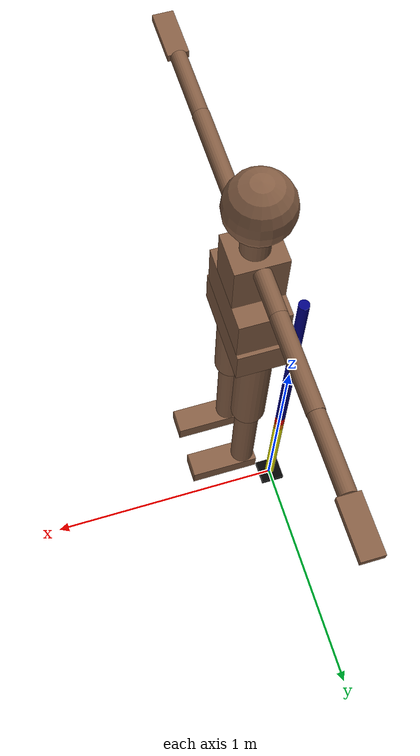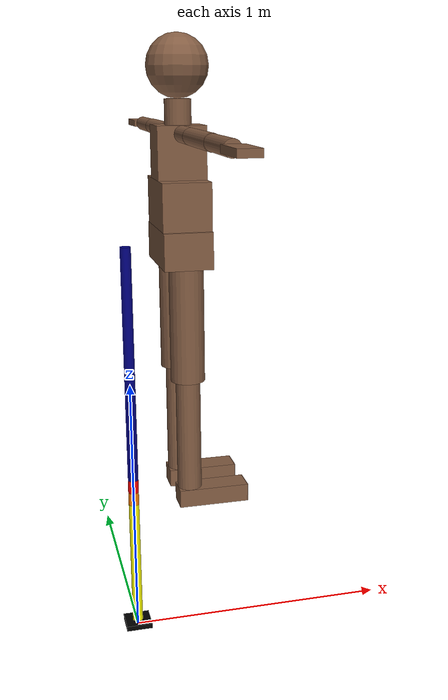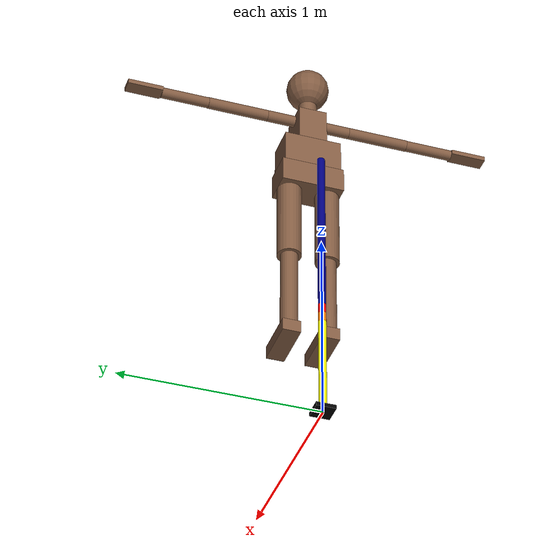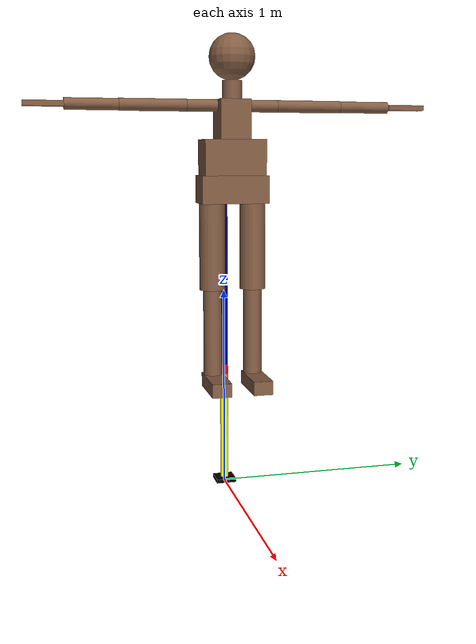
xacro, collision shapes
<?xml version="1.0"?>
<robot xmlns:xacro="http://www.ros.org/wiki/xacro" name="human_support">

    <xacro:include filename="common_properties.xacro"/>
    <xacro:include filename="arm_3dof.xacro"/>
    <xacro:include filename="$(find humanoid_robot)/humanSubjectWithMesh_simplified.urdf"/>

     <joint name="arm_human_joint" type="fixed">
        <origin xyz="${(arm_base_length)*2} 0.0 ${twist_arm_length}" rpy="0.0 0.0 0.0"/>
        <parent link="link4"/>
        <child link="Pelvis"/>
    </joint>

    <gazebo>
        <plugin filename="gz-sim-pose-publisher-system" name="gz::sim::systems::PosePublisher">
            <publish_link_pose>false</publish_link_pose>
            <publish_collision_pose>false</publish_collision_pose>
            <publish_visual_pose>false</publish_visual_pose>
            <publish_nested_model_pose>true</publish_nested_model_pose>
        </plugin>
    </gazebo>
</robot>

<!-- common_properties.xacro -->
<robot xmlns:xacro="http://www.ros.org/wiki/xacro">

    <material name="blue">
        <color rgba="0.0 0.0 0.5 1.0"/>
    </material>

    <material name="grey">
        <color rgba="0.5 0.5 0.5 1.0"/>
    </material>

    <material name="orange">
        <color rgba="1.0 0.5 0.0 1.0"/>
    </material>

    <material name="yellow">
        <color rgba="1.0 1.0 0.0 1.0"/>
    </material>

    <material name="black">
        <color rgba="0 0 0 1"/>
    </material>

    <material name="red">
        <color rgba="1 0 0 1"/>
    </material>

    <xacro:macro name="box_inertia" params="m l w h xyz rpy">
        <inertial>
            <origin xyz="${xyz}" rpy="${rpy}"/>
            <mass value="${m}"/>
            <inertia ixx="${(m/12) * (h*h+w*w)}" ixy="0.0" ixz="0.0"
                     iyy="${(m/12) * (l*l+h*h)}" iyz="0.0"
                     izz="${(m/12) * (l*l+w*w)}"/>
        </inertial>
    </xacro:macro>

    <xacro:macro name="cylinder_inertia" params="m r h xyz rpy">
        <inertial>
            <origin xyz="${xyz}" rpy="${rpy}"/>
            <mass value="${m}"/>
            <inertia ixx="${(m/12) * (3*r*r + h*h)}" ixy="0.0" ixz="0.0"
                     iyy="${(m/12) * (3*r*r + h*h)}" iyz="0.0"
                     izz="${(m/2) * (r*r)}"/>
        </inertial>
    </xacro:macro>

    <xacro:macro name="sphere_inertia" params="m r xyz rpy">
        <inertial>
            <origin xyz="${xyz}" rpy="${rpy}"/>
            <mass value="${m}"/>
            <inertia ixx="${(2/5) * m * r*r}" ixy="0.0" ixz="0.0"
                     iyy="${(2/5) * m * r*r}" iyz="0.0"
                     izz="${(2/5) * m * r*r}"/>
        </inertial>
    </xacro:macro>

</robot>

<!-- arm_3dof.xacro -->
<robot xmlns:xacro="http://www.ros.org/wiki/xacro">

    <xacro:property name="arm_base_length" value="0.1"/>
    <xacro:property name="arm_base_width" value="0.1"/>
    <xacro:property name="arm_base_height" value="0.02"/>
    <xacro:property name="arm_radius" value="0.02"/>
    <xacro:property name="arm_length" value="0.25"/>

    <!-- length link1 should be at least the length of foot collision box (0.2584 meters) -->
    <xacro:property name="link1_length" value="0.5"/>
    <!-- revolute arm links are small to keep the movement gathered -->
    <xacro:property name="revolute_arm_length" value="0.05"/>
    <!-- twist arm length is the rest of the length to get to 1 meter from end of link 1 -->
    <xacro:property name="twist_arm_length" value="${1-(revolute_arm_length*2)}"/>

    <link name="base_link">
        <visual>
            <geometry>
                <box size="${arm_base_length} ${arm_base_width} ${arm_base_height}"/>
            </geometry>
            <origin xyz="0.0 0.0 ${arm_base_height/2}" rpy="0.0 0.0 0.0"/>
            <material name="black"/>
        </visual>
        <collision>
            <geometry>
                <box size="${arm_base_length} ${arm_base_width} ${arm_base_height}"/>
            </geometry>
            <origin xyz="0.0 0.0 ${arm_base_height/2}" rpy="0.0 0.0 0.0"/>
        </collision>
        <xacro:box_inertia m="0.5" l="${arm_base_length}" w="${arm_base_width}" h="${arm_base_height}"
                           xyz="0.0 0.0 ${arm_base_height/2.0}" rpy="0.0 0.0 0.0" />
    </link>

    <link name="link1">
        <visual>
            <geometry>
                <cylinder radius="${arm_radius}" length="${link1_length}"/>
            </geometry>
            <origin xyz="0.0 0.0 ${link1_length/2}" rpy="0.0 0.0 0.0"/>
            <material name="yellow"/>
        </visual>
        <collision>
            <geometry>
                <cylinder radius="${arm_radius}" length="${link1_length}"/>
            </geometry>
            <origin xyz="0.0 0.0 ${link1_length/2}" rpy="0.0 0.0 0.0"/>
        </collision>
        <xacro:cylinder_inertia m="0.3" r="${arm_radius}" h="${link1_length}"
                                xyz="0.0 0.0 ${link1_length/2}" rpy="0.0 0.0 0.0" />
    </link>

    <link name="link2">
        <visual>
            <geometry>
                <cylinder radius="${arm_radius}" length="${revolute_arm_length}"/>
            </geometry>
            <origin xyz="0.0 0.0 ${revolute_arm_length/2}" rpy="0.0 0.0 0.0"/>
            <material name="orange"/>
        </visual>
        <collision>
            <geometry>
                <cylinder radius="${arm_radius}" length="${revolute_arm_length}"/>
            </geometry>
            <origin xyz="0.0 0.0 ${revolute_arm_length/2}" rpy="0.0 0.0 0.0"/>
        </collision>
        <xacro:cylinder_inertia m="0.3" r="${arm_radius}" h="${revolute_arm_length}"
                                xyz="0.0 0.0 ${revolute_arm_length/2}" rpy="0.0 0.0 0.0" />
    </link>

    <link name="link3">
        <visual>
            <geometry>
                <cylinder radius="${arm_radius}" length="${revolute_arm_length}"/>
            </geometry>
            <origin xyz="0.0 0.0 ${revolute_arm_length/2}" rpy="0.0 0.0 0.0"/>
            <material name="red"/>
        </visual>
        <collision>
            <geometry>
                <cylinder radius="${arm_radius}" length="${revolute_arm_length}"/>
            </geometry>
            <origin xyz="0.0 0.0 ${revolute_arm_length/2}" rpy="0.0 0.0 0.0"/>
        </collision>
        <xacro:cylinder_inertia m="0.3" r="${arm_radius}" h="${revolute_arm_length}"
                                xyz="0.0 0.0 ${revolute_arm_length/2}" rpy="0.0 0.0 0.0" />
    </link>

    <link name="link4">
        <visual>
            <geometry>
                <cylinder radius="${arm_radius}" length="${twist_arm_length}"/>
            </geometry>
            <origin xyz="0.0 0.0 ${twist_arm_length/2}" rpy="0.0 0.0 0.0"/>
            <material name="blue"/>
        </visual>
        <collision>
            <geometry>
                <cylinder radius="${arm_radius}" length="${twist_arm_length}"/>
            </geometry>
            <origin xyz="0.0 0.0 ${twist_arm_length/2}" rpy="0.0 0.0 0.0"/>
        </collision>
        <xacro:cylinder_inertia m="0.3" r="${arm_radius}" h="${twist_arm_length}"
                                xyz="0.0 0.0 ${twist_arm_length/2}" rpy="0.0 0.0 0.0" />
    </link>

    <!-- Fixed joint to slightly raise humanoid before movement -->
    <joint name="base_link1_joint" type="fixed">
        <parent link="base_link"/>
        <child link="link1"/>
        <origin xyz="0 0 ${arm_base_height}" rpy="0 0 0"/>
    </joint>

    <joint name="link1_link2_joint" type="revolute">
        <parent link="link1"/>
        <child link="link2"/>
        <axis xyz="1 0 0"/>
        <limit lower="${-pi/2}" upper="${pi/2}" velocity="100.0" effort="1000.0"/>
        <origin xyz="0 0 ${link1_length}" rpy="0 0 0"/>
    </joint>

    <joint name="link2_link3_joint" type="revolute">
        <parent link="link2"/>
        <child link="link3"/>
        <axis xyz="0 1 0"/>
        <limit lower="${-pi/2}" upper="${pi/2}" velocity="100.0" effort="1000.0"/>
        <origin xyz="0 0 ${revolute_arm_length}" rpy="0 0 0"/>
    </joint>

    <joint name="link3_link4_joint" type="revolute">
        <parent link="link3"/>
        <child link="link4"/>
        <axis xyz="0 0 1"/>
        <limit lower="${-pi/2}" upper="${pi/2}" velocity="100.0" effort="1000.0"/>
        <origin xyz="0 0 ${revolute_arm_length}" rpy="0 0 0"/>
    </joint>

</robot>

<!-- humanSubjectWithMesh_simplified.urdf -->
<robot name="HumanModel">

  <link name="Pelvis">
    <inertial>
      <origin xyz="0.0 0.0 0.0" rpy="0.0 0.0 0.0"/>
      <mass value="0.07098"/>
      <inertia ixx="0.072762100775" ixy="0.0" ixz="0.0" iyy="0.028514890039999997" iyz="0.0" izz="0.080476585735"/>
    </inertial>
    <visual name="Pelvis">
      <geometry>
        <mesh filename="file://$(find humanoid_robot)/meshes/Pelvis.stl" scale="0.58333333 1.03030303 1.03030303"/>
      </geometry>
      <material name="Link">
        <color rgba="0.51 0.36 0.26 1.0"/>
      </material>
      <origin xyz="0.0 0.0 0.0" rpy="0.0 0.0 0.0"/>
    </visual>
    <visual name="Pelvis_RightRecAbd">
      <geometry>
        <mesh filename="file://$(find humanoid_robot)/meshes/Pelvis_RightRecAbd.stl" scale="0.58333333 1.03030303 1.03030303"/>
      </geometry>
      <material name="muscle">
        <color rgba="0.51 0.36 0.26 1.0"/>
      </material>
      <origin xyz="0.0 0.0 0.0" rpy="0.0 0.0 0.0"/>
    </visual>
    <visual name="Pelvis_RightErcSpin">
      <geometry>
        <mesh filename="file://$(find humanoid_robot)/meshes/Pelvis_RightErcSpin.stl" scale="0.58333333 1.03030303 1.03030303"/>
      </geometry>
      <material name="muscle">
        <color rgba="0.51 0.36 0.26 1.0"/>
      </material>
      <origin xyz="0.0 0.0 0.0" rpy="0.0 0.0 0.0"/>
    </visual>
    <visual name="Pelvis_LeftRecAbd">
      <geometry>
        <mesh filename="file://$(find humanoid_robot)/meshes/Pelvis_LeftRecAbd.stl" scale="0.58333333 1.03030303 1.03030303"/>
      </geometry>
      <material name="muscle">
        <color rgba="0.51 0.36 0.26 1.0"/>
      </material>
      <origin xyz="0.0 0.0 0.0" rpy="0.0 0.0 0.0"/>
    </visual>
    <visual name="Pelvis_LeftErcSpin">
      <geometry>
        <mesh filename="file://$(find humanoid_robot)/meshes/Pelvis_LeftErcSpin.stl" scale="0.58333333 1.03030303 1.03030303"/>
      </geometry>
      <material name="muscle">
        <color rgba="0.51 0.36 0.26 1.0"/>
      </material>
      <origin xyz="0.0 0.0 0.0" rpy="0.0 0.0 0.0"/>
    </visual>
    <collision>
      <geometry>
        <box size="0.175  0.3247 0.1326"/>
      </geometry>
      <origin xyz="0.0 0.0 0.0" rpy="0.0 0.0 0.0"/>
    </collision>
  </link>
  <link name="LowerTrunk_f1">
    <inertial>
      <origin xyz="0.0 0.0 0.0" rpy="0.0 0.0 0.0"/>
      <mass value="0.01"/>
      <inertia ixx="0.01" ixy="0.0" ixz="0.0" iyy="0.01" iyz="0.0" izz="0.01"/>
    </inertial>
  </link>
  <link name="LowerTrunk">
    <inertial>
      <origin xyz="0.0 0.0 0.085" rpy="0.0 0.0 0.0"/>
      <mass value="0.09294"/>
      <inertia ixx="0.09014997218" ixy="0.0" ixz="0.0" iyy="0.04610211250000001" iyz="0.0" izz="0.09148598468"/>
    </inertial>
    <visual name="LowerTrunk">
      <geometry>
        <mesh filename="file://$(find humanoid_robot)/meshes/LowerTrunk.stl" scale="0.58333333 1.03030303 1.03030303"/>
      </geometry>
      <material name="Link">
        <color rgba="0.51 0.36 0.26 1.0"/>
      </material>
      <origin xyz="0.0 0.0 0.085" rpy="0.0 0.0 0.0"/>
    </visual>
    <visual name="LowerTrunk_RightRecAbd">
      <geometry>
        <mesh filename="file://$(find humanoid_robot)/meshes/LowerTrunk_RightRecAbd.stl" scale="0.58333333 1.03030303 1.03030303"/>
      </geometry>
      <material name="muscle">
        <color rgba="0.51 0.36 0.26 1.0"/>
      </material>
      <origin xyz="0.0 0.0 0.085" rpy="0.0 0.0 0.0"/>
    </visual>
    <visual name="LowerTrunk_RightErcSpin">
      <geometry>
        <mesh filename="file://$(find humanoid_robot)/meshes/LowerTrunk_RightErcSpin.stl" scale="0.58333333 1.03030303 1.03030303"/>
      </geometry>
      <material name="muscle">
        <color rgba="0.51 0.36 0.26 1.0"/>
      </material>
      <origin xyz="0.0 0.0 0.085" rpy="0.0 0.0 0.0"/>
    </visual>
    <visual name="LowerTrunk_LefttRecAbd">
      <geometry>
        <mesh filename="file://$(find humanoid_robot)/meshes/LowerTrunk_LefttRecAbd.stl" scale="0.58333333 1.03030303 1.03030303"/>
      </geometry>
      <material name="muscle">
        <color rgba="0.51 0.36 0.26 1.0"/>
      </material>
      <origin xyz="0.0 0.0 0.085" rpy="0.0 0.0 0.0"/>
    </visual>
    <visual name="LowerTrunk_LeftErcSpin">
      <geometry>
        <mesh filename="file://$(find humanoid_robot)/meshes/LowerTrunk_LeftErcSpin.stl" scale="0.58333333 1.03030303 1.03030303"/>
      </geometry>
      <material name="muscle">
        <color rgba="0.51 0.36 0.26 1.0"/>
      </material>
      <origin xyz="0.0 0.0 0.085" rpy="0.0 0.0 0.0"/>
    </visual>
    <collision>
      <geometry>
        <box size="0.175  0.2958 0.17  "/>
      </geometry>
      <origin xyz="0.0 0.0 0.085" rpy="0.0 0.0 0.0"/>
    </collision>
  </link>
  <link name="UpperTrunk_f1">
    <inertial>
      <origin xyz="0.0 0.0 0.0" rpy="0.0 0.0 0.0"/>
      <mass value="0.01"/>
      <inertia ixx="0.01" ixy="0.0" ixz="0.0" iyy="0.01" iyz="0.0" izz="0.01"/>
    </inertial>
  </link>
  <link name="UpperTrunk_f2">
    <inertial>
      <origin xyz="0.0 0.0 0.0" rpy="0.0 0.0 0.0"/>
      <mass value="0.01"/>
      <inertia ixx="0.01" ixy="0.0" ixz="0.0" iyy="0.01" iyz="0.0" izz="0.01"/>
    </inertial>
  </link>
  <link name="UpperTrunk">
    <inertial>
      <origin xyz="0.0 0.0 0.0935" rpy="0.0 0.0 0.0"/>
      <mass value="0.03138"/>
      <inertia ixx="0.014777222337222225" ixy="0.0" ixz="0.0" iyy="0.017152831" iyz="0.0" izz="0.013641266337222223"/>
    </inertial>
    <visual name="UpperTrunk">
      <geometry>
        <mesh filename="file://$(find humanoid_robot)/meshes/UpperTrunk.stl" scale="0.58333333 1.03030303 1.03030303"/>
      </geometry>
      <material name="Link">
        <color rgba="0.51 0.36 0.26 1.0"/>
      </material>
      <origin xyz="0.0 0.0 0.0935" rpy="0.0 0.0 0.0"/>
    </visual>
    <visual name="UpperTrunk_RightRecAbd">
      <geometry>
        <mesh filename="file://$(find humanoid_robot)/meshes/UpperTrunk_RightRecAbd.stl" scale="0.58333333 1.03030303 1.03030303"/>
      </geometry>
      <material name="muscle">
        <color rgba="0.51 0.36 0.26 1.0"/>
      </material>
      <origin xyz="0.0 0.0 0.0935" rpy="0.0 0.0 0.0"/>
    </visual>
    <visual name="UpperTrunk_RightErcSpin">
      <geometry>
        <mesh filename="file://$(find humanoid_robot)/meshes/UpperTrunk_RightErcSpin.stl" scale="0.58333333 1.03030303 1.03030303"/>
      </geometry>
      <material name="muscle">
        <color rgba="0.51 0.36 0.26 1.0"/>
      </material>
      <origin xyz="0.0 0.0 0.0935" rpy="0.0 0.0 0.0"/>
    </visual>
    <visual name="UpperTrunk_LeftRecAbd">
      <geometry>
        <mesh filename="file://$(find humanoid_robot)/meshes/UpperTrunk_LeftRecAbd.stl" scale="0.58333333 1.03030303 1.03030303"/>
      </geometry>
      <material name="muscle">
        <color rgba="0.51 0.36 0.26 1.0"/>
      </material>
      <origin xyz="0.0 0.0 0.0935" rpy="0.0 0.0 0.0"/>
    </visual>
    <visual name="UpperTrunk_LeftErcSpin">
      <geometry>
        <mesh filename="file://$(find humanoid_robot)/meshes/UpperTrunk_LeftErcSpin.stl" scale="0.58333333 1.03030303 1.03030303"/>
      </geometry>
      <material name="muscle">
        <color rgba="0.51 0.36 0.26 1.0"/>
      </material>
      <origin xyz="0.0 0.0 0.0935" rpy="0.0 0.0 0.0"/>
    </visual>
    <collision>
      <geometry>
        <box size="0.175      0.14676667 0.187     "/>
      </geometry>
      <origin xyz="0.0 0.0 0.0935" rpy="0.0 0.0 0.0"/>
    </collision>
  </link>
  <link name="RightShoulder">
    <inertial>
      <origin xyz="0.0 -0.07338333333333334 0.0" rpy="1.5708 0.0 0.0"/>
      <mass value="0.03138"/>
      <inertia ixx="0.01" ixy="0.0" ixz="0.0" iyy="0.01" iyz="0.0" izz="0.01"/>
    </inertial>
    <visual name="RightShoulder">
      <geometry>
        <mesh filename="file://$(find humanoid_robot)/meshes/RightShoulder.stl" scale="0.64444444 0.64444444 1.03030303"/>
      </geometry>
      <material name="Link">
        <color rgba="0.51 0.36 0.26 1.0"/>
      </material>
      <origin xyz="0.0 -0.07338333333333334 0.0" rpy="1.5708 0.0 0.0"/>
    </visual>
    <collision>
      <geometry>
        <cylinder radius="0.029" length="0.14676666666666668"/>
      </geometry>
      <origin xyz="0.0 -0.07338333333333334 0.0" rpy="1.5708 0.0 0.0"/>
    </collision>
  </link>
  <link name="LeftShoulder">
    <inertial>
      <origin xyz="0.0 0.07338333333333334 0.0" rpy="1.5708 0.0 0.0"/>
      <mass value="0.03138"/>
      <inertia ixx="0.01" ixy="0.0" ixz="0.0" iyy="0.01" iyz="0.0" izz="0.01"/>
    </inertial>
    <visual name="LeftShoulder">
      <geometry>
        <mesh filename="file://$(find humanoid_robot)/meshes/LeftShoulder.stl" scale="0.64444444 0.64444444 1.03030303"/>
      </geometry>
      <material name="Link">
        <color rgba="0.51 0.36 0.26 1.0"/>
      </material>
      <origin xyz="0.0 0.07338333333333334 0.0" rpy="1.5708 0.0 0.0"/>
    </visual>
    <collision>
      <geometry>
        <cylinder radius="0.029" length="0.14676666666666668"/>
      </geometry>
      <origin xyz="0.0 0.07338333333333334 0.0" rpy="1.5708 0.0 0.0"/>
    </collision>
  </link>
  <link name="Neck_f1">
    <inertial>
      <origin xyz="0.0 0.0 0.0" rpy="0.0 0.0 0.0"/>
      <mass value="0.01"/>
      <inertia ixx="0.01" ixy="0.0" ixz="0.0" iyy="0.01" iyz="0.0" izz="0.01"/>
    </inertial>
  </link>
  <link name="Neck_f2">
    <inertial>
      <origin xyz="0.0 0.0 0.0" rpy="0.0 0.0 0.0"/>
      <mass value="0.01"/>
      <inertia ixx="0.01" ixy="0.0" ixz="0.0" iyy="0.01" iyz="0.0" izz="0.01"/>
    </inertial>
  </link>
  <link name="Neck">
    <inertial>
      <origin xyz="0.0 0.0 0.044199999999999996" rpy="0.0 0.0 0.0"/>
      <mass value="0.011640000000000001"/>
      <inertia ixx="0.01" ixy="0.0" ixz="0.0" iyy="0.01" iyz="0.0" izz="0.01"/>
    </inertial>
    <visual name="Neck">
      <geometry>
        <mesh filename="file://$(find humanoid_robot)/meshes/Neck.stl" scale="0.73076923 0.73076923 1.03030303"/>
      </geometry>
      <material name="Link">
        <color rgba="0.51 0.36 0.26 1.0"/>
      </material>
      <origin xyz="0.0 0.0 0.044199999999999996" rpy="0.0 0.0 0.0"/>
    </visual>
    <collision>
      <geometry>
        <cylinder radius="0.0475" length="0.08839999999999999"/>
      </geometry>
      <origin xyz="0.0 0.0 0.044199999999999996" rpy="0.0 0.0 0.0"/>
    </collision>
  </link>
  <link name="Head_f1">
    <inertial>
      <origin xyz="0.0 0.0 0.0" rpy="0.0 0.0 0.0"/>
      <mass value="0.01"/>
      <inertia ixx="0.01" ixy="0.0" ixz="0.0" iyy="0.01" iyz="0.0" izz="0.01"/>
    </inertial>
  </link>
  <link name="Head">
    <inertial>
      <origin xyz="0.0 0.0 0.1105" rpy="0.0 0.0 0.0"/>
      <mass value="0.02922"/>
      <inertia ixx="0.014271340200000001" ixy="0.0" ixz="0.0" iyy="0.014271340200000001" iyz="0.0" izz="0.014271340200000001"/>
    </inertial>
    <visual name="Head">
      <geometry>
        <mesh filename="file://$(find humanoid_robot)/meshes/Head.stl" scale="1.03030303 1.03030303 1.03030303"/>
      </geometry>
      <material name="Link">
        <color rgba="0.51 0.36 0.26 1.0"/>
      </material>
      <origin xyz="0.0 0.0 0.1105" rpy="0.0 0.0 0.0"/>
    </visual>
    <collision>
      <geometry>
        <sphere radius="0.1105"/>
      </geometry>
      <origin xyz="0.0 0.0 0.1105" rpy="0.0 0.0 0.0"/>
    </collision>
  </link>
  <gazebo reference="Head">
      <visual>
          <material>
            <color rgba="0.51 0.36 0.26 1.0"/>
          </material>
      </visual>
  </gazebo>
  <link name="RightShoulder_f1">
    <inertial>
      <origin xyz="0.0 0.0 0.0" rpy="0.0 0.0 0.0"/>
      <mass value="0.01"/>
      <inertia ixx="0.01" ixy="0.0" ixz="0.0" iyy="0.01" iyz="0.0" izz="0.01"/>
    </inertial>
  </link>
  <link name="RightShoulder_f2">
    <inertial>
      <origin xyz="0.0 0.0 0.0" rpy="0.0 0.0 0.0"/>
      <mass value="0.01"/>
      <inertia ixx="0.01" ixy="0.0" ixz="0.0" iyy="0.01" iyz="0.0" izz="0.01"/>
    </inertial>
  </link>
  <link name="RightUpperArm">
    <inertial>
      <origin xyz="0.0 -0.1581 0.0" rpy="1.5708 0.0 0.0"/>
      <mass value="0.01578"/>
      <inertia ixx="0.013479465359999998" ixy="0.0" ixz="0.0" iyy="0.013479465359999998" iyz="0.0" izz="0.01"/>
    </inertial>
    <visual name="RightUpperArm">
      <geometry>
        <mesh filename="file://$(find humanoid_robot)/meshes/RightUpperArm.stl" scale="0.64444444 0.64444444 1.03030303"/>
      </geometry>
      <material name="Link">
        <color rgba="0.51 0.36 0.26 1.0"/>
      </material>
      <origin xyz="0.0 -0.1581 0.0" rpy="1.5708 0.0 0.0"/>
    </visual>
    <visual name="RightTricBrac">
      <geometry>
        <mesh filename="file://$(find humanoid_robot)/meshes/RightTricBrac.stl" scale="0.64444444 0.64444444 1.03030303"/>
      </geometry>
      <material name="muscle">
        <color rgba="0.51 0.36 0.26 1.0"/>
      </material>
      <origin xyz="0.0 -0.1581 0.0" rpy="1.5708 0.0 0.0"/>
    </visual>
    <visual name="RightBicBrac">
      <geometry>
        <mesh filename="file://$(find humanoid_robot)/meshes/RightBicBrac.stl" scale="0.64444444 0.64444444 1.03030303"/>
      </geometry>
      <material name="muscle">
        <color rgba="0.51 0.36 0.26 1.0"/>
      </material>
      <origin xyz="0.0 -0.1581 0.0" rpy="1.5708 0.0 0.0"/>
    </visual>
    <collision>
      <geometry>
        <cylinder radius="0.029" length="0.3162"/>
      </geometry>
      <origin xyz="0.0 -0.1581 0.0" rpy="1.5708 0.0 0.0"/>
    </collision>
  </link>
  <link name="RightForeArm_f1">
    <inertial>
      <origin xyz="0.0 0.0 0.0" rpy="0.0 0.0 0.0"/>
      <mass value="0.01"/>
      <inertia ixx="0.01" ixy="0.0" ixz="0.0" iyy="0.01" iyz="0.0" izz="0.01"/>
    </inertial>
  </link>
  <link name="RightForeArm">
    <inertial>
      <origin xyz="0.0 -0.12409999999999999 0.0" rpy="1.5708 0.0 0.0"/>
      <mass value="0.008999999999999999"/>
      <inertia ixx="0.01" ixy="0.0" ixz="0.0" iyy="0.01" iyz="0.0" izz="0.01"/>
    </inertial>
    <visual name="RightForeArm">
      <geometry>
        <mesh filename="file://$(find humanoid_robot)/meshes/RightForeArm.stl" scale="0.61111111 0.61111111 1.03030303"/>
      </geometry>
      <material name="Link">
        <color rgba="0.51 0.36 0.26 1.0"/>
      </material>
      <origin xyz="0.0 -0.12409999999999999 0.0" rpy="1.5708 0.0 0.0"/>
    </visual>
    <visual name="RightFlexCarp">
      <geometry>
        <mesh filename="file://$(find humanoid_robot)/meshes/RightFlexCarp.stl" scale="0.61111111 0.61111111 1.03030303"/>
      </geometry>
      <material name="muscle">
        <color rgba="0.51 0.36 0.26 1.0"/>
      </material>
      <origin xyz="0.0 -0.12409999999999999 0.0" rpy="1.5708 0.0 0.0"/>
    </visual>
    <visual name="RightExtCarp">
      <geometry>
        <mesh filename="file://$(find humanoid_robot)/meshes/RightExtCarp.stl" scale="0.61111111 0.61111111 1.03030303"/>
      </geometry>
      <material name="muscle">
        <color rgba="0.51 0.36 0.26 1.0"/>
      </material>
      <origin xyz="0.0 -0.12409999999999999 0.0" rpy="1.5708 0.0 0.0"/>
    </visual>
    <collision>
      <geometry>
        <cylinder radius="0.0275" length="0.24819999999999998"/>
      </geometry>
      <origin xyz="0.0 -0.12409999999999999 0.0" rpy="1.5708 0.0 0.0"/>
    </collision>
  </link>
  <link name="RightHand_f1">
    <inertial>
      <origin xyz="0.0 0.0 0.0" rpy="0.0 0.0 0.0"/>
      <mass value="0.01"/>
      <inertia ixx="0.01" ixy="0.0" ixz="0.0" iyy="0.01" iyz="0.0" izz="0.01"/>
    </inertial>
  </link>
  <link name="RightHand">
    <inertial>
      <origin xyz="0.0 -0.09179999999999999 0.0" rpy="0.0 0.0 0.0"/>
      <mass value="0.00354"/>
      <inertia ixx="0.01" ixy="0.0" ixz="0.0" iyy="0.01" iyz="0.0" izz="0.01"/>
    </inertial>
    <visual name="RightHand">
      <geometry>
        <mesh filename="file://$(find humanoid_robot)/meshes/RightHand.stl" scale="0.9        1.03030303 0.55555556"/>
      </geometry>
      <material name="Link">
        <color rgba="0.51 0.36 0.26 1.0"/>
      </material>
      <origin xyz="0.0 -0.09179999999999999 0.0" rpy="0.0 0.0 0.0"/>
    </visual>
    <collision>
      <geometry>
        <box size="0.072  0.1836 0.025 "/>
      </geometry>
      <origin xyz="0.0 -0.09179999999999999 0.0" rpy="0.0 0.0 0.0"/>
    </collision>
  </link>
  <link name="LeftShoulder_f1">
    <inertial>
      <origin xyz="0.0 0.0 0.0" rpy="0.0 0.0 0.0"/>
      <mass value="0.01"/>
      <inertia ixx="0.01" ixy="0.0" ixz="0.0" iyy="0.01" iyz="0.0" izz="0.01"/>
    </inertial>
  </link>
  <link name="LeftShoulder_f2">
    <inertial>
      <origin xyz="0.0 0.0 0.0" rpy="0.0 0.0 0.0"/>
      <mass value="0.01"/>
      <inertia ixx="0.01" ixy="0.0" ixz="0.0" iyy="0.01" iyz="0.0" izz="0.01"/>
    </inertial>
  </link>
  <link name="LeftUpperArm">
    <inertial>
      <origin xyz="0.0 0.1581 0.0" rpy="1.5708 0.0 0.0"/>
      <mass value="0.01578"/>
      <inertia ixx="0.013479465359999998" ixy="0.0" ixz="0.0" iyy="0.013479465359999998" iyz="0.0" izz="0.01"/>
    </inertial>
    <visual name="LeftUpperArm">
      <geometry>
        <mesh filename="file://$(find humanoid_robot)/meshes/LeftUpperArm.stl" scale="0.64444444 0.64444444 1.03030303"/>
      </geometry>
      <material name="Link">
        <color rgba="0.51 0.36 0.26 1.0"/>
      </material>
      <origin xyz="0.0 0.1581 0.0" rpy="1.5708 0.0 0.0"/>
    </visual>
    <visual name="LeftTricBrac">
      <geometry>
        <mesh filename="file://$(find humanoid_robot)/meshes/LeftTricBrac.stl" scale="0.64444444 0.64444444 1.03030303"/>
      </geometry>
      <material name="muscle">
        <color rgba="0.51 0.36 0.26 1.0"/>
      </material>
      <origin xyz="0.0 0.1581 0.0" rpy="1.5708 0.0 0.0"/>
    </visual>
    <visual name="LeftBicBrac">
      <geometry>
        <mesh filename="file://$(find humanoid_robot)/meshes/LeftBicBrac.stl" scale="0.64444444 0.64444444 1.03030303"/>
      </geometry>
      <material name="muscle">
        <color rgba="0.51 0.36 0.26 1.0"/>
      </material>
      <origin xyz="0.0 0.1581 0.0" rpy="1.5708 0.0 0.0"/>
    </visual>
    <collision>
      <geometry>
        <cylinder radius="0.029" length="0.3162"/>
      </geometry>
      <origin xyz="0.0 0.1581 0.0" rpy="1.5708 0.0 0.0"/>
    </collision>
  </link>
  <link name="LeftForeArm_f1">
    <inertial>
      <origin xyz="0.0 0.0 0.0" rpy="0.0 0.0 0.0"/>
      <mass value="0.01"/>
      <inertia ixx="0.01" ixy="0.0" ixz="0.0" iyy="0.01" iyz="0.0" izz="0.01"/>
    </inertial>
  </link>
  <link name="LeftForeArm">
    <inertial>
      <origin xyz="0.0 0.12409999999999999 0.0" rpy="1.5708 0.0 0.0"/>
      <mass value="0.008999999999999999"/>
      <inertia ixx="0.01" ixy="0.0" ixz="0.0" iyy="0.01" iyz="0.0" izz="0.01"/>
    </inertial>
    <visual name="LeftForeArm">
      <geometry>
        <mesh filename="file://$(find humanoid_robot)/meshes/LeftForeArm.stl" scale="0.61111111 0.61111111 1.03030303"/>
      </geometry>
      <material name="Link">
        <color rgba="0.51 0.36 0.26 1.0"/>
      </material>
      <origin xyz="0.0 0.12409999999999999 0.0" rpy="1.5708 0.0 0.0"/>
    </visual>
    <visual name="LeftFlexCarp">
      <geometry>
        <mesh filename="file://$(find humanoid_robot)/meshes/LeftFlexCarp.stl" scale="0.61111111 0.61111111 1.03030303"/>
      </geometry>
      <material name="muscle">
        <color rgba="0.51 0.36 0.26 1.0"/>
      </material>
      <origin xyz="0.0 0.12409999999999999 0.0" rpy="1.5708 0.0 0.0"/>
    </visual>
    <visual name="LeftExtCarp">
      <geometry>
        <mesh filename="file://$(find humanoid_robot)/meshes/LeftExtCarp.stl" scale="0.61111111 0.61111111 1.03030303"/>
      </geometry>
      <material name="muscle">
        <color rgba="0.51 0.36 0.26 1.0"/>
      </material>
      <origin xyz="0.0 0.12409999999999999 0.0" rpy="1.5708 0.0 0.0"/>
    </visual>
    <collision>
      <geometry>
        <cylinder radius="0.0275" length="0.24819999999999998"/>
      </geometry>
      <origin xyz="0.0 0.12409999999999999 0.0" rpy="1.5708 0.0 0.0"/>
    </collision>
  </link>
  <link name="LeftHand_f1">
    <inertial>
      <origin xyz="0.0 0.0 0.0" rpy="0.0 0.0 0.0"/>
      <mass value="0.01"/>
      <inertia ixx="0.01" ixy="0.0" ixz="0.0" iyy="0.01" iyz="0.0" izz="0.01"/>
    </inertial>
  </link>
  <link name="LeftHand">
    <inertial>
      <origin xyz="0.0 0.09179999999999999 0.0" rpy="0.0 0.0 0.0"/>
      <mass value="0.00354"/>
      <inertia ixx="0.01" ixy="0.0" ixz="0.0" iyy="0.01" iyz="0.0" izz="0.01"/>
    </inertial>
    <visual name="LeftHand">
      <geometry>
        <mesh filename="file://$(find humanoid_robot)/meshes/LeftHand.stl" scale="0.9        1.03030303 0.55555556"/>
      </geometry>
      <material name="Link">
        <color rgba="0.51 0.36 0.26 1.0"/>
      </material>
      <origin xyz="0.0 0.09179999999999999 0.0" rpy="0.0 0.0 0.0"/>
    </visual>
    <collision>
      <geometry>
        <box size="0.072  0.1836 0.025 "/>
      </geometry>
      <origin xyz="0.0 0.09179999999999999 0.0" rpy="0.0 0.0 0.0"/>
    </collision>
  </link>
  <link name="RightUpperLeg_f1">
    <inertial>
      <origin xyz="0.0 0.0 0.0" rpy="0.0 0.0 0.0"/>
      <mass value="0.01"/>
      <inertia ixx="0.01" ixy="0.0" ixz="0.0" iyy="0.01" iyz="0.0" izz="0.01"/>
    </inertial>
  </link>
  <link name="RightUpperLeg_f2">
    <inertial>
      <origin xyz="0.0 0.0 0.0" rpy="0.0 0.0 0.0"/>
      <mass value="0.01"/>
      <inertia ixx="0.01" ixy="0.0" ixz="0.0" iyy="0.01" iyz="0.0" izz="0.01"/>
    </inertial>
  </link>
  <link name="RightUpperLeg">
    <inertial>
      <origin xyz="0.0 0.0 -0.20825" rpy="0.0 0.0 0.0"/>
      <mass value="0.08682"/>
      <inertia ixx="0.1339856885" ixy="0.0" ixz="0.0" iyy="0.1339856885" iyz="0.0" izz="0.01695703125"/>
    </inertial>
    <visual name="RightUpperLeg">
      <geometry>
        <mesh filename="file://$(find humanoid_robot)/meshes/RightUpperLeg.stl" scale="0.83333333 0.83333333 1.03030303"/>
      </geometry>
      <material name="Link">
        <color rgba="0.51 0.36 0.26 1.0"/>
      </material>
      <origin xyz="0.0 0.0 -0.20825" rpy="0.0 0.0 0.0"/>
    </visual>
    <visual name="RightRecFem">
      <geometry>
        <mesh filename="file://$(find humanoid_robot)/meshes/RightRecFem.stl" scale="0.83333333 0.83333333 1.03030303"/>
      </geometry>
      <material name="muscle">
        <color rgba="0.51 0.36 0.26 1.0"/>
      </material>
      <origin xyz="0.0 0.0 -0.20825" rpy="0.0 0.0 0.0"/>
    </visual>
    <visual name="RightBicFem">
      <geometry>
        <mesh filename="file://$(find humanoid_robot)/meshes/RightBicFem.stl" scale="0.83333333 0.83333333 1.03030303"/>
      </geometry>
      <material name="muscle">
        <color rgba="0.51 0.36 0.26 1.0"/>
      </material>
      <origin xyz="0.0 0.0 -0.20825" rpy="0.0 0.0 0.0"/>
    </visual>
    <collision>
      <geometry>
        <cylinder radius="0.0625" length="0.4165"/>
      </geometry>
      <origin xyz="0.0 0.0 -0.20825" rpy="0.0 0.0 0.0"/>
    </collision>
  </link>
  <link name="RightLowerLeg_f1">
    <inertial>
      <origin xyz="0.0 0.0 0.0" rpy="0.0 0.0 0.0"/>
      <mass value="0.01"/>
      <inertia ixx="0.01" ixy="0.0" ixz="0.0" iyy="0.01" iyz="0.0" izz="0.01"/>
    </inertial>
  </link>
  <link name="RightLowerLeg">
    <inertial>
      <origin xyz="0.0 0.0 -0.20909999999999998" rpy="0.0 0.0 0.0"/>
      <mass value="0.02742"/>
      <inertia ixx="0.041350785839999994" ixy="0.0" ixz="0.0" iyy="0.041350785839999994" iyz="0.0" izz="0.01"/>
    </inertial>
    <visual name="RightLowerLeg">
      <geometry>
        <mesh filename="file://$(find humanoid_robot)/meshes/RightLowerLeg.stl" scale="0.7826087  0.7826087  1.03030303"/>
      </geometry>
      <material name="Link">
        <color rgba="0.51 0.36 0.26 1.0"/>
      </material>
      <origin xyz="0.0 0.0 -0.20909999999999998" rpy="0.0 0.0 0.0"/>
    </visual>
    <visual name="RightTibAnt">
      <geometry>
        <mesh filename="file://$(find humanoid_robot)/meshes/RightTibAnt.stl" scale="0.7826087  0.7826087  1.03030303"/>
      </geometry>
      <material name="muscle">
        <color rgba="0.51 0.36 0.26 1.0"/>
      </material>
      <origin xyz="0.0 0.0 -0.20909999999999998" rpy="0.0 0.0 0.0"/>
    </visual>
    <visual name="RightGasMed">
      <geometry>
        <mesh filename="file://$(find humanoid_robot)/meshes/RightGasMed.stl" scale="0.7826087  0.7826087  1.03030303"/>
      </geometry>
      <material name="muscle">
        <color rgba="0.51 0.36 0.26 1.0"/>
      </material>
      <origin xyz="0.0 0.0 -0.20909999999999998" rpy="0.0 0.0 0.0"/>
    </visual>
    <visual name="RightGasLat">
      <geometry>
        <mesh filename="file://$(find humanoid_robot)/meshes/RightGasLat.stl" scale="0.7826087  0.7826087  1.03030303"/>
      </geometry>
      <material name="muscle">
        <color rgba="0.51 0.36 0.26 1.0"/>
      </material>
      <origin xyz="0.0 0.0 -0.20909999999999998" rpy="0.0 0.0 0.0"/>
    </visual>
    <collision>
      <geometry>
        <cylinder radius="0.045" length="0.41819999999999996"/>
      </geometry>
      <origin xyz="0.0 0.0 -0.20909999999999998" rpy="0.0 0.0 0.0"/>
    </collision>
  </link>
  <link name="RightFoot_f1">
    <inertial>
      <origin xyz="0.0 0.0 0.0" rpy="0.0 0.0 0.0"/>
      <mass value="0.01"/>
      <inertia ixx="0.01" ixy="0.0" ixz="0.0" iyy="0.01" iyz="0.0" izz="0.01"/>
    </inertial>
  </link>
  <link name="RightFoot_f2">
    <inertial>
      <origin xyz="0.0 0.0 0.0" rpy="0.0 0.0 0.0"/>
      <mass value="0.01"/>
      <inertia ixx="0.01" ixy="0.0" ixz="0.0" iyy="0.01" iyz="0.0" izz="0.01"/>
    </inertial>
  </link>
  <link name="RightFoot">
    <inertial>
      <origin xyz="0.08419999999999998 0.0 -0.03315" rpy="0.0 0.0 0.0"/>
      <mass value="0.0079002"/>
      <inertia ixx="0.01" ixy="0.0" ixz="0.0" iyy="0.01" iyz="0.0" izz="0.01"/>
    </inertial>
    <visual name="RightFoot">
      <geometry>
        <mesh filename="file://$(find humanoid_robot)/meshes/RightFoot.stl" scale="1.03030303 1.03030303 1.03030303"/>
      </geometry>
      <material name="Link">
        <color rgba="0.51 0.36 0.26 1.0"/>
      </material>
      <origin xyz="0.08419999999999998 0.0 -0.03315" rpy="0.0 0.0 0.0"/>
    </visual>
    <collision>
      <geometry>
        <box size="0.2584 0.0935 0.0663"/>
      </geometry>
      <origin xyz="0.08419999999999998 0.0 -0.03315" rpy="0.0 0.0 0.0"/>
    </collision>
  </link>
  <link name="RightToe">
    <inertial>
      <origin xyz="0.0 0.0 0.0" rpy="0.0 0.0 0.0"/>
      <mass value="0.0000798"/>
      <inertia ixx="0.01" ixy="0.0" ixz="0.0" iyy="0.01" iyz="0.0" izz="0.01"/>
    </inertial>
    <visual name="RightToe">
      <geometry>
        <mesh filename="file://$(find humanoid_robot)/meshes/RightToe.stl" scale="1.03030303 1.03030303 1.03030303"/>
      </geometry>
      <material name="Link">
        <color rgba="0.51 0.36 0.26 1.0"/>
      </material>
      <origin xyz="0.0 0.0 0.0" rpy="0.0 0.0 0.0"/>
    </visual>
    <collision>
      <geometry>
        <box size="0.002584 0.0935   0.0663  "/>
      </geometry>
      <origin xyz="0.0 0.0 0.0" rpy="0.0 0.0 0.0"/>
    </collision>
  </link>
  <link name="LeftUpperLeg_f1">
    <inertial>
      <origin xyz="0.0 0.0 0.0" rpy="0.0 0.0 0.0"/>
      <mass value="0.01"/>
      <inertia ixx="0.01" ixy="0.0" ixz="0.0" iyy="0.01" iyz="0.0" izz="0.01"/>
    </inertial>
  </link>
  <link name="LeftUpperLeg_f2">
    <inertial>
      <origin xyz="0.0 0.0 0.0" rpy="0.0 0.0 0.0"/>
      <mass value="0.01"/>
      <inertia ixx="0.01" ixy="0.0" ixz="0.0" iyy="0.01" iyz="0.0" izz="0.01"/>
    </inertial>
  </link>
  <link name="LeftUpperLeg">
    <inertial>
      <origin xyz="0.0 0.0 -0.20825" rpy="0.0 0.0 0.0"/>
      <mass value="0.08682"/>
      <inertia ixx="0.1339856885" ixy="0.0" ixz="0.0" iyy="0.1339856885" iyz="0.0" izz="0.01695703125"/>
    </inertial>
    <visual name="LeftUpperLeg">
      <geometry>
        <mesh filename="file://$(find humanoid_robot)/meshes/LeftUpperLeg.stl" scale="0.83333333 0.83333333 1.03030303"/>
      </geometry>
      <material name="Link">
        <color rgba="0.51 0.36 0.26 1.0"/>
      </material>
      <origin xyz="0.0 0.0 -0.20825" rpy="0.0 0.0 0.0"/>
    </visual>
    <visual name="LeftRecFem">
      <geometry>
        <mesh filename="file://$(find humanoid_robot)/meshes/LeftRecFem.stl" scale="0.83333333 0.83333333 1.03030303"/>
      </geometry>
      <material name="muscle">
        <color rgba="0.51 0.36 0.26 1.0"/>
      </material>
      <origin xyz="0.0 0.0 -0.20825" rpy="0.0 0.0 0.0"/>
    </visual>
    <visual name="LeftBicFem">
      <geometry>
        <mesh filename="file://$(find humanoid_robot)/meshes/LeftBicFem.stl" scale="0.83333333 0.83333333 1.03030303"/>
      </geometry>
      <material name="muscle">
        <color rgba="0.51 0.36 0.26 1.0"/>
      </material>
      <origin xyz="0.0 0.0 -0.20825" rpy="0.0 0.0 0.0"/>
    </visual>
    <collision>
      <geometry>
        <cylinder radius="0.0625" length="0.4165"/>
      </geometry>
      <origin xyz="0.0 0.0 -0.20825" rpy="0.0 0.0 0.0"/>
    </collision>
  </link>
  <link name="LeftLowerLeg_f1">
    <inertial>
      <origin xyz="0.0 0.0 0.0" rpy="0.0 0.0 0.0"/>
      <mass value="0.01"/>
      <inertia ixx="0.01" ixy="0.0" ixz="0.0" iyy="0.01" iyz="0.0" izz="0.01"/>
    </inertial>
  </link>
  <link name="LeftLowerLeg">
    <inertial>
      <origin xyz="0.0 0.0 -0.20909999999999998" rpy="0.0 0.0 0.0"/>
      <mass value="0.02742"/>
      <inertia ixx="0.041350785839999994" ixy="0.0" ixz="0.0" iyy="0.041350785839999994" iyz="0.0" izz="0.01"/>
    </inertial>
    <visual name="LeftLowerLeg">
      <geometry>
        <mesh filename="file://$(find humanoid_robot)/meshes/LeftLowerLeg.stl" scale="0.7826087  0.7826087  1.03030303"/>
      </geometry>
      <material name="Link">
        <color rgba="0.51 0.36 0.26 1.0"/>
      </material>
      <origin xyz="0.0 0.0 -0.20909999999999998" rpy="0.0 0.0 0.0"/>
    </visual>
    <visual name="LeftTibAnt">
      <geometry>
        <mesh filename="file://$(find humanoid_robot)/meshes/LeftTibAnt.stl" scale="0.7826087  0.7826087  1.03030303"/>
      </geometry>
      <material name="muscle">
        <color rgba="0.51 0.36 0.26 1.0"/>
      </material>
      <origin xyz="0.0 0.0 -0.20909999999999998" rpy="0.0 0.0 0.0"/>
    </visual>
    <visual name="LeftGasMed">
      <geometry>
        <mesh filename="file://$(find humanoid_robot)/meshes/LeftGasMed.stl" scale="0.7826087  0.7826087  1.03030303"/>
      </geometry>
      <material name="muscle">
        <color rgba="0.51 0.36 0.26 1.0"/>
      </material>
      <origin xyz="0.0 0.0 -0.20909999999999998" rpy="0.0 0.0 0.0"/>
    </visual>
    <visual name="LeftGasLat">
      <geometry>
        <mesh filename="file://$(find humanoid_robot)/meshes/LeftGasLat.stl" scale="0.7826087  0.7826087  1.03030303"/>
      </geometry>
      <material name="muscle">
        <color rgba="0.51 0.36 0.26 1.0"/>
      </material>
      <origin xyz="0.0 0.0 -0.20909999999999998" rpy="0.0 0.0 0.0"/>
    </visual>
    <collision>
      <geometry>
        <cylinder radius="0.045" length="0.41819999999999996"/>
      </geometry>
      <origin xyz="0.0 0.0 -0.20909999999999998" rpy="0.0 0.0 0.0"/>
    </collision>
  </link>
  <link name="LeftFoot_f1">
    <inertial>
      <origin xyz="0.0 0.0 0.0" rpy="0.0 0.0 0.0"/>
      <mass value="0.01"/>
      <inertia ixx="0.01" ixy="0.0" ixz="0.0" iyy="0.01" iyz="0.0" izz="0.01"/>
    </inertial>
  </link>
  <link name="LeftFoot_f2">
    <inertial>
      <origin xyz="0.0 0.0 0.0" rpy="0.0 0.0 0.0"/>
      <mass value="0.01"/>
      <inertia ixx="0.01" ixy="0.0" ixz="0.0" iyy="0.01" iyz="0.0" izz="0.01"/>
    </inertial>
  </link>
  <link name="LeftFoot">
    <inertial>
      <origin xyz="0.08419999999999998 0.0 -0.03315" rpy="0.0 0.0 0.0"/>
      <mass value="0.0079002"/>
      <inertia ixx="0.01" ixy="0.0" ixz="0.0" iyy="0.01" iyz="0.0" izz="0.01"/>
    </inertial>
    <visual name="LeftFoot">
      <geometry>
        <mesh filename="file://$(find humanoid_robot)/meshes/LeftFoot.stl" scale="1.03030303 1.03030303 1.03030303"/>
      </geometry>
      <material name="Link">
        <color rgba="0.51 0.36 0.26 1.0"/>
      </material>
      <origin xyz="0.08419999999999998 0.0 -0.03315" rpy="0.0 0.0 0.0"/>
    </visual>
    <collision>
      <geometry>
        <box size="0.2584 0.0935 0.0663"/>
      </geometry>
      <origin xyz="0.08419999999999998 0.0 -0.03315" rpy="0.0 0.0 0.0"/>
    </collision>
  </link>
  <link name="LeftToe">
    <inertial>
      <origin xyz="0.0 0.0 0.0" rpy="0.0 0.0 0.0"/>
      <mass value="0.0000798"/>
      <inertia ixx="0.01" ixy="0.0" ixz="0.0" iyy="0.01" iyz="0.0" izz="0.01"/>
    </inertial>
    <visual name="LeftToe">
      <geometry>
        <mesh filename="file://$(find humanoid_robot)/meshes/LeftToe.stl" scale="1.03030303 1.03030303 1.03030303"/>
      </geometry>
      <material name="Link">
        <color rgba="0.51 0.36 0.26 1.0"/>
      </material>
      <origin xyz="0.0 0.0 0.0" rpy="0.0 0.0 0.0"/>
    </visual>
    <collision>
      <geometry>
        <box size="0.002584 0.0935   0.0663  "/>
      </geometry>
      <origin xyz="0.0 0.0 0.0" rpy="0.0 0.0 0.0"/>
    </collision>
  </link>

  <joint name="jL5S1_rotx" type="revolute">
    <dynamics damping="0.1" friction="0.0"/>
    <limit effort="30.0" velocity="1.0" lower="-0.610865" upper="0.610865"/>
    <parent link="Pelvis"/>
    <child link="LowerTrunk_f1"/>
    <axis xyz="1. 0. 0."/>
    <origin xyz="0.0 0.0 0.0663" rpy="0.0 0.0 0.0"/>
  </joint>
  <joint name="jL5S1_roty" type="revolute">
    <dynamics damping="0.1" friction="0.0"/>
    <limit effort="30.0" velocity="1.0" lower="-0.523599" upper="1.309"/>
    <parent link="LowerTrunk_f1"/>
    <child link="LowerTrunk"/>
    <axis xyz="0. 1. 0."/>
    <origin xyz="0.0 0.0 0.0" rpy="0.0 0.0 0.0"/>
  </joint>
  <joint name="jT9T8_rotx" type="revolute">
    <dynamics damping="0.1" friction="0.0"/>
    <limit effort="30.0" velocity="1.0" lower="-0.349066" upper="0.349066"/>
    <parent link="LowerTrunk"/>
    <child link="UpperTrunk_f1"/>
    <axis xyz="1. 0. 0."/>
    <origin xyz="0.0 0.0 0.17" rpy="0.0 0.0 0.0"/>
  </joint>
  <joint name="jT9T8_roty" type="revolute">
    <dynamics damping="0.1" friction="0.0"/>
    <limit effort="30.0" velocity="1.0" lower="-0.261799" upper="0.698132"/>
    <parent link="UpperTrunk_f1"/>
    <child link="UpperTrunk_f2"/>
    <axis xyz="0. 1. 0."/>
    <origin xyz="0.0 0.0 0.0" rpy="0.0 0.0 0.0"/>
  </joint>
  <joint name="jT9T8_rotz" type="revolute">
    <dynamics damping="0.1" friction="0.0"/>
    <limit effort="30.0" velocity="1.0" lower="-0.610865" upper="0.610865"/>
    <parent link="UpperTrunk_f2"/>
    <child link="UpperTrunk"/>
    <axis xyz="0. 0. 1."/>
    <origin xyz="0.0 0.0 0.0" rpy="0.0 0.0 0.0"/>
  </joint>
  <joint name="jC7RightShoulder_rotx" type="revolute">
    <dynamics damping="0.1" friction="0.0"/>
    <limit effort="30.0" velocity="1.0" lower="-0.785398" upper="0.0872665"/>
    <parent link="UpperTrunk"/>
    <child link="RightShoulder"/>
    <axis xyz="1. 0. 0."/>
    <origin xyz="0.0 -0.07338333333333334 0.158" rpy="0.0 0.0 0.0"/>
  </joint>
  <joint name="jC7LeftShoulder_rotx" type="revolute">
    <dynamics damping="0.1" friction="0.0"/>
    <limit effort="30.0" velocity="1.0" lower="-0.0872665" upper="0.785398"/>
    <parent link="UpperTrunk"/>
    <child link="LeftShoulder"/>
    <axis xyz="1. 0. 0."/>
    <origin xyz="0.0 0.07338333333333334 0.158" rpy="0.0 0.0 0.0"/>
  </joint>
  <joint name="jT1C7_rotx" type="revolute">
    <dynamics damping="0.1" friction="0.0"/>
    <limit effort="30.0" velocity="1.0" lower="-0.610865" upper="0.610865"/>
    <parent link="UpperTrunk"/>
    <child link="Neck_f1"/>
    <axis xyz="1. 0. 0."/>
    <origin xyz="0.0 0.0 0.187" rpy="0.0 0.0 0.0"/>
  </joint>
  <joint name="jT1C7_roty" type="revolute">
    <dynamics damping="0.1" friction="0.0"/>
    <limit effort="30.0" velocity="1.0" lower="-0.959931" upper="1.5708"/>
    <parent link="Neck_f1"/>
    <child link="Neck_f2"/>
    <axis xyz="0. 1. 0."/>
    <origin xyz="0.0 0.0 0.0" rpy="0.0 0.0 0.0"/>
  </joint>
  <joint name="jT1C7_rotz" type="revolute">
    <dynamics damping="0.1" friction="0.0"/>
    <limit effort="30.0" velocity="1.0" lower="-1.22173" upper="1.22173"/>
    <parent link="Neck_f2"/>
    <child link="Neck"/>
    <axis xyz="0. 0. 1."/>
    <origin xyz="0.0 0.0 0.0" rpy="0.0 0.0 0.0"/>
  </joint>
  <joint name="jC1Head_rotx" type="revolute">
    <dynamics damping="0.1" friction="0.0"/>
    <limit effort="30.0" velocity="1.0" lower="-0.610865" upper="0.610865"/>
    <parent link="Neck"/>
    <child link="Head_f1"/>
    <axis xyz="1. 0. 0."/>
    <origin xyz="0.0 0.0 0.08839999999999999" rpy="0.0 0.0 0.0"/>
  </joint>
  <joint name="jC1Head_roty" type="revolute">
    <dynamics damping="0.1" friction="0.0"/>
    <limit effort="30.0" velocity="1.0" lower="-0.436332" upper="0.174533"/>
    <parent link="Head_f1"/>
    <child link="Head"/>
    <axis xyz="0. 1. 0."/>
    <origin xyz="0.0 0.0 0.0" rpy="0.0 0.0 0.0"/>
  </joint>
  <joint name="jRightShoulder_rotx" type="revolute">
    <dynamics damping="0.1" friction="0.0"/>
    <limit effort="30.0" velocity="1.0" lower="-2.35619" upper="1.5708"/>
    <parent link="RightShoulder"/>
    <child link="RightShoulder_f1"/>
    <axis xyz="1. 0. 0."/>
    <origin xyz="0.0 -0.14676666666666668 0.0" rpy="0.0 0.0 0.0"/>
  </joint>
  <joint name="jRightShoulder_roty" type="revolute">
    <dynamics damping="0.1" friction="0.0"/>
    <limit effort="30.0" velocity="1.0" lower="-1.5708" upper="1.5708"/>
    <parent link="RightShoulder_f1"/>
    <child link="RightShoulder_f2"/>
    <axis xyz="0. 1. 0."/>
    <origin xyz="0.0 0.0 0.0" rpy="0.0 0.0 0.0"/>
  </joint>
  <joint name="jRightShoulder_rotz" type="revolute">
    <dynamics damping="0.1" friction="0.0"/>
    <limit effort="30.0" velocity="1.0" lower="-0.785398" upper="3.14159"/>
    <parent link="RightShoulder_f2"/>
    <child link="RightUpperArm"/>
    <axis xyz="0. 0. 1."/>
    <origin xyz="0.0 0.0 0.0" rpy="0.0 0.0 0.0"/>
  </joint>
  <joint name="jRightElbow_roty" type="revolute">
    <dynamics damping="0.1" friction="0.0"/>
    <limit effort="30.0" velocity="1.0" lower="-1.5708" upper="1.48353"/>
    <parent link="RightUpperArm"/>
    <child link="RightForeArm_f1"/>
    <axis xyz="0. 1. 0."/>
    <origin xyz="0.0 -0.3162 0.0" rpy="0.0 0.0 0.0"/>
  </joint>
  <joint name="jRightElbow_rotz" type="revolute">
    <dynamics damping="0.1" friction="0.0"/>
    <limit effort="30.0" velocity="1.0" lower="0.0" upper="2.53073"/>
    <parent link="RightForeArm_f1"/>
    <child link="RightForeArm"/>
    <axis xyz="0. 0. 1."/>
    <origin xyz="0.0 0.0 0.0" rpy="0.0 0.0 0.0"/>
  </joint>
  <joint name="jRightWrist_rotx" type="revolute">
    <dynamics damping="0.1" friction="0.0"/>
    <limit effort="30.0" velocity="1.0" lower="-0.872665" upper="1.0472"/>
    <parent link="RightForeArm"/>
    <child link="RightHand_f1"/>
    <axis xyz="1. 0. 0."/>
    <origin xyz="0.0 -0.24819999999999998 0.0" rpy="0.0 0.0 0.0"/>
  </joint>
  <joint name="jRightWrist_rotz" type="revolute">
    <dynamics damping="0.1" friction="0.0"/>
    <limit effort="30.0" velocity="1.0" lower="-0.523599" upper="0.349066"/>
    <parent link="RightHand_f1"/>
    <child link="RightHand"/>
    <axis xyz="0. 0. 1."/>
    <origin xyz="0.0 0.0 0.0" rpy="0.0 0.0 0.0"/>
  </joint>
  <joint name="jLeftShoulder_rotx" type="revolute">
    <dynamics damping="0.1" friction="0.0"/>
    <limit effort="30.0" velocity="1.0" lower="-1.5708" upper="2.35619"/>
    <parent link="LeftShoulder"/>
    <child link="LeftShoulder_f1"/>
    <axis xyz="1. 0. 0."/>
    <origin xyz="0.0 0.14676666666666668 0.0" rpy="0.0 0.0 0.0"/>
  </joint>
  <joint name="jLeftShoulder_roty" type="revolute">
    <dynamics damping="0.1" friction="0.0"/>
    <limit effort="30.0" velocity="1.0" lower="-1.5708" upper="1.5708"/>
    <parent link="LeftShoulder_f1"/>
    <child link="LeftShoulder_f2"/>
    <axis xyz="0. 1. 0."/>
    <origin xyz="0.0 0.0 0.0" rpy="0.0 0.0 0.0"/>
  </joint>
  <joint name="jLeftShoulder_rotz" type="revolute">
    <dynamics damping="0.1" friction="0.0"/>
    <limit effort="30.0" velocity="1.0" lower="-3.14159" upper="0.785398"/>
    <parent link="LeftShoulder_f2"/>
    <child link="LeftUpperArm"/>
    <axis xyz="0. 0. 1."/>
    <origin xyz="0.0 0.0 0.0" rpy="0.0 0.0 0.0"/>
  </joint>
  <joint name="jLeftElbow_roty" type="revolute">
    <dynamics damping="0.1" friction="0.0"/>
    <limit effort="30.0" velocity="1.0" lower="-1.5708" upper="1.48353"/>
    <parent link="LeftUpperArm"/>
    <child link="LeftForeArm_f1"/>
    <axis xyz="0. 1. 0."/>
    <origin xyz="0.0 0.3162 0.0" rpy="0.0 0.0 0.0"/>
  </joint>
  <joint name="jLeftElbow_rotz" type="revolute">
    <dynamics damping="0.1" friction="0.0"/>
    <limit effort="30.0" velocity="1.0" lower="-2.53073" upper="0.0"/>
    <parent link="LeftForeArm_f1"/>
    <child link="LeftForeArm"/>
    <axis xyz="0. 0. 1."/>
    <origin xyz="0.0 0.0 0.0" rpy="0.0 0.0 0.0"/>
  </joint>
  <joint name="jLeftWrist_rotx" type="revolute">
    <dynamics damping="0.1" friction="0.0"/>
    <limit effort="30.0" velocity="1.0" lower="-1.0472" upper="0.872665"/>
    <parent link="LeftForeArm"/>
    <child link="LeftHand_f1"/>
    <axis xyz="1. 0. 0."/>
    <origin xyz="0.0 0.24819999999999998 0.0" rpy="0.0 0.0 0.0"/>
  </joint>
  <joint name="jLeftWrist_rotz" type="revolute">
    <dynamics damping="0.1" friction="0.0"/>
    <limit effort="30.0" velocity="1.0" lower="-0.349066" upper="0.523599"/>
    <parent link="LeftHand_f1"/>
    <child link="LeftHand"/>
    <axis xyz="0. 0. 1."/>
    <origin xyz="0.0 0.0 0.0" rpy="0.0 0.0 0.0"/>
  </joint>
  <joint name="jRightHip_rotx" type="revolute">
    <dynamics damping="0.1" friction="0.0"/>
    <limit effort="30.0" velocity="1.0" lower="-0.785398" upper="0.523599"/>
    <parent link="Pelvis"/>
    <child link="RightUpperLeg_f1"/>
    <axis xyz="1. 0. 0."/>
    <origin xyz="0.0 -0.09985 -0.0663" rpy="0.0 0.0 0.0"/>
  </joint>
  <joint name="jRightHip_roty" type="revolute">
    <dynamics damping="0.1" friction="0.0"/>
    <limit effort="30.0" velocity="1.0" lower="-2.0944" upper="0.261799"/>
    <parent link="RightUpperLeg_f1"/>
    <child link="RightUpperLeg_f2"/>
    <axis xyz="0. 1. 0."/>
    <origin xyz="0.0 0.0 0.0" rpy="0.0 0.0 0.0"/>
  </joint>
  <joint name="jRightHip_rotz" type="revolute">
    <dynamics damping="0.1" friction="0.0"/>
    <limit effort="30.0" velocity="1.0" lower="-0.785398" upper="0.785398"/>
    <parent link="RightUpperLeg_f2"/>
    <child link="RightUpperLeg"/>
    <axis xyz="0. 0. 1."/>
    <origin xyz="0.0 0.0 0.0" rpy="0.0 0.0 0.0"/>
  </joint>
  <joint name="jRightKnee_roty" type="revolute">
    <dynamics damping="0.1" friction="0.0"/>
    <limit effort="30.0" velocity="1.0" lower="0.0" upper="2.35619"/>
    <parent link="RightUpperLeg"/>
    <child link="RightLowerLeg_f1"/>
    <axis xyz="0. 1. 0."/>
    <origin xyz="0.0 0.0 -0.4165" rpy="0.0 0.0 0.0"/>
  </joint>
  <joint name="jRightKnee_rotz" type="revolute">
    <dynamics damping="0.1" friction="0.0"/>
    <limit effort="30.0" velocity="1.0" lower="-0.698132" upper="0.523599"/>
    <parent link="RightLowerLeg_f1"/>
    <child link="RightLowerLeg"/>
    <axis xyz="0. 0. 1."/>
    <origin xyz="0.0 0.0 0.0" rpy="0.0 0.0 0.0"/>
  </joint>
  <joint name="jRightAnkle_rotx" type="revolute">
    <dynamics damping="0.1" friction="0.0"/>
    <limit effort="30.0" velocity="1.0" lower="-0.610865" upper="0.785398"/>
    <parent link="RightLowerLeg"/>
    <child link="RightFoot_f1"/>
    <axis xyz="1. 0. 0."/>
    <origin xyz="0.0 0.0 -0.41819999999999996" rpy="0.0 0.0 0.0"/>
  </joint>
  <joint name="jRightAnkle_roty" type="revolute">
    <dynamics damping="0.1" friction="0.0"/>
    <limit effort="30.0" velocity="1.0" lower="-0.523599" upper="0.872665"/>
    <parent link="RightFoot_f1"/>
    <child link="RightFoot_f2"/>
    <axis xyz="0. 1. 0."/>
    <origin xyz="0.0 0.0 0.0" rpy="0.0 0.0 0.0"/>
  </joint>
  <joint name="jRightAnkle_rotz" type="revolute">
    <dynamics damping="0.1" friction="0.0"/>
    <limit effort="30.0" velocity="1.0" lower="-0.436332" upper="0.872665"/>
    <parent link="RightFoot_f2"/>
    <child link="RightFoot"/>
    <axis xyz="0. 0. 1."/>
    <origin xyz="0.0 0.0 0.0" rpy="0.0 0.0 0.0"/>
  </joint>
  <joint name="jRightBallFoot_roty" type="revolute">
    <dynamics damping="0.1" friction="0.0"/>
    <limit effort="30.0" velocity="1.0" lower="-0.174533" upper="1.5708"/>
    <parent link="RightFoot"/>
    <child link="RightToe"/>
    <axis xyz="0. 1. 0."/>
    <origin xyz="0.21469199999999997 0.0 -0.03315" rpy="0.0 0.0 0.0"/>
  </joint>
  <joint name="jLeftHip_rotx" type="revolute">
    <dynamics damping="0.1" friction="0.0"/>
    <limit effort="30.0" velocity="1.0" lower="-0.523599" upper="0.785398"/>
    <parent link="Pelvis"/>
    <child link="LeftUpperLeg_f1"/>
    <axis xyz="1. 0. 0."/>
    <origin xyz="0.0 0.09985 -0.0663" rpy="0.0 0.0 0.0"/>
  </joint>
  <joint name="jLeftHip_roty" type="revolute">
    <dynamics damping="0.1" friction="0.0"/>
    <limit effort="30.0" velocity="1.0" lower="-2.0944" upper="0.261799"/>
    <parent link="LeftUpperLeg_f1"/>
    <child link="LeftUpperLeg_f2"/>
    <axis xyz="0. 1. 0."/>
    <origin xyz="0.0 0.0 0.0" rpy="0.0 0.0 0.0"/>
  </joint>
  <joint name="jLeftHip_rotz" type="revolute">
    <dynamics damping="0.1" friction="0.0"/>
    <limit effort="30.0" velocity="1.0" lower="-0.785398" upper="0.785398"/>
    <parent link="LeftUpperLeg_f2"/>
    <child link="LeftUpperLeg"/>
    <axis xyz="0. 0. 1."/>
    <origin xyz="0.0 0.0 0.0" rpy="0.0 0.0 0.0"/>
  </joint>
  <joint name="jLeftKnee_roty" type="revolute">
    <dynamics damping="0.1" friction="0.0"/>
    <limit effort="30.0" velocity="1.0" lower="0.0" upper="2.35619"/>
    <parent link="LeftUpperLeg"/>
    <child link="LeftLowerLeg_f1"/>
    <axis xyz="0. 1. 0."/>
    <origin xyz="0.0 0.0 -0.4165" rpy="0.0 0.0 0.0"/>
  </joint>
  <joint name="jLeftKnee_rotz" type="revolute">
    <dynamics damping="0.1" friction="0.0"/>
    <limit effort="30.0" velocity="1.0" lower="-0.523599" upper="0.698132"/>
    <parent link="LeftLowerLeg_f1"/>
    <child link="LeftLowerLeg"/>
    <axis xyz="0. 0. 1."/>
    <origin xyz="0.0 0.0 0.0" rpy="0.0 0.0 0.0"/>
  </joint>
  <joint name="jLeftAnkle_rotx" type="revolute">
    <dynamics damping="0.1" friction="0.0"/>
    <limit effort="30.0" velocity="1.0" lower="-0.785398" upper="0.610865"/>
    <parent link="LeftLowerLeg"/>
    <child link="LeftFoot_f1"/>
    <axis xyz="1. 0. 0."/>
    <origin xyz="0.0 0.0 -0.41819999999999996" rpy="0.0 0.0 0.0"/>
  </joint>
  <joint name="jLeftAnkle_roty" type="revolute">
    <dynamics damping="0.1" friction="0.0"/>
    <limit effort="30.0" velocity="1.0" lower="-0.523599" upper="0.872665"/>
    <parent link="LeftFoot_f1"/>
    <child link="LeftFoot_f2"/>
    <axis xyz="0. 1. 0."/>
    <origin xyz="0.0 0.0 0.0" rpy="0.0 0.0 0.0"/>
  </joint>
  <joint name="jLeftAnkle_rotz" type="revolute">
    <dynamics damping="0.1" friction="0.0"/>
    <limit effort="30.0" velocity="1.0" lower="-0.872665" upper="0.436332"/>
    <parent link="LeftFoot_f2"/>
    <child link="LeftFoot"/>
    <axis xyz="0. 0. 1."/>
    <origin xyz="0.0 0.0 0.0" rpy="0.0 0.0 0.0"/>
  </joint>
  <joint name="jLeftBallFoot_roty" type="revolute">
    <dynamics damping="0.1" friction="0.0"/>
    <limit effort="30.0" velocity="1.0" lower="-0.174533" upper="1.5708"/>
    <parent link="LeftFoot"/>
    <child link="LeftToe"/>
    <axis xyz="0. 1. 0."/>
    <origin xyz="0.21469199999999997 0.0 -0.03315" rpy="0.0 0.0 0.0"/>
  </joint>

</robot>
